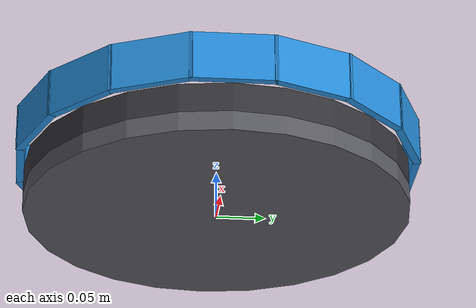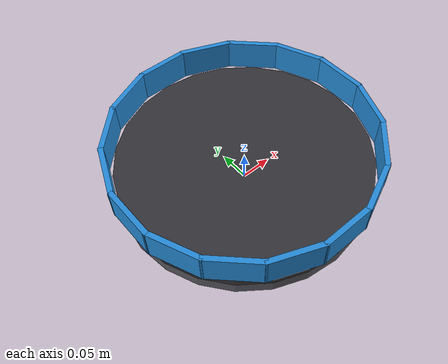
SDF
<?xml version="1.0" encoding="UTF-8"?>
<!-- funnel_tray_big —— 自动生成（tools/gen_tray.py）。独立圆形托盘（static），供物理/落物测试。 -->
<sdf version='1.9'>
  <model name='funnel_tray_big'>
    <static>true</static>
    <link name="tray">
      <pose>0 0 0 0 0 0</pose>
      <inertial><mass>0.12</mass><inertia><ixx>6.0e-4</ixx><iyy>6.0e-4</iyy><izz>6.0e-4</izz><ixy>0</ixy><ixz>0</ixz><iyz>0</iyz></inertia></inertial>
      <collision name="tray_base"><pose>0 0 0.0100 0 0 0</pose><geometry><cylinder><radius>0.2000</radius><length>0.02</length></cylinder></geometry><surface><friction><ode><mu>0.8</mu><mu2>0.8</mu2></ode></friction><bounce><restitution_coefficient>0.1</restitution_coefficient></bounce></surface></collision>
      <collision name="tray_cushion"><pose>0 0 0.0350 0 0 0</pose><geometry><cylinder><radius>0.2000</radius><length>0.03</length></cylinder></geometry><surface><friction><ode><mu>1.5</mu><mu2>1.5</mu2></ode></friction><bounce><restitution_coefficient>0.05</restitution_coefficient></bounce></surface></collision>
      <collision name="tray_rim_0"><pose>0.2040 0.0000 0.0750 0 0 0.0000</pose><geometry><box><size>0.008 0.0860 0.05</size></box></geometry><surface><friction><ode><mu>0.8</mu><mu2>0.8</mu2></ode></friction><bounce><restitution_coefficient>0.1</restitution_coefficient></bounce></surface></collision>
      <collision name="tray_rim_1"><pose>0.1885 0.0781 0.0750 0 0 0.3927</pose><geometry><box><size>0.008 0.0860 0.05</size></box></geometry><surface><friction><ode><mu>0.8</mu><mu2>0.8</mu2></ode></friction><bounce><restitution_coefficient>0.1</restitution_coefficient></bounce></surface></collision>
      <collision name="tray_rim_2"><pose>0.1442 0.1442 0.0750 0 0 0.7854</pose><geometry><box><size>0.008 0.0860 0.05</size></box></geometry><surface><friction><ode><mu>0.8</mu><mu2>0.8</mu2></ode></friction><bounce><restitution_coefficient>0.1</restitution_coefficient></bounce></surface></collision>
      <collision name="tray_rim_3"><pose>0.0781 0.1885 0.0750 0 0 1.1781</pose><geometry><box><size>0.008 0.0860 0.05</size></box></geometry><surface><friction><ode><mu>0.8</mu><mu2>0.8</mu2></ode></friction><bounce><restitution_coefficient>0.1</restitution_coefficient></bounce></surface></collision>
      <collision name="tray_rim_4"><pose>0.0000 0.2040 0.0750 0 0 1.5708</pose><geometry><box><size>0.008 0.0860 0.05</size></box></geometry><surface><friction><ode><mu>0.8</mu><mu2>0.8</mu2></ode></friction><bounce><restitution_coefficient>0.1</restitution_coefficient></bounce></surface></collision>
      <collision name="tray_rim_5"><pose>-0.0781 0.1885 0.0750 0 0 1.9635</pose><geometry><box><size>0.008 0.0860 0.05</size></box></geometry><surface><friction><ode><mu>0.8</mu><mu2>0.8</mu2></ode></friction><bounce><restitution_coefficient>0.1</restitution_coefficient></bounce></surface></collision>
      <collision name="tray_rim_6"><pose>-0.1442 0.1442 0.0750 0 0 2.3562</pose><geometry><box><size>0.008 0.0860 0.05</size></box></geometry><surface><friction><ode><mu>0.8</mu><mu2>0.8</mu2></ode></friction><bounce><restitution_coefficient>0.1</restitution_coefficient></bounce></surface></collision>
      <collision name="tray_rim_7"><pose>-0.1885 0.0781 0.0750 0 0 2.7489</pose><geometry><box><size>0.008 0.0860 0.05</size></box></geometry><surface><friction><ode><mu>0.8</mu><mu2>0.8</mu2></ode></friction><bounce><restitution_coefficient>0.1</restitution_coefficient></bounce></surface></collision>
      <collision name="tray_rim_8"><pose>-0.2040 0.0000 0.0750 0 0 3.1416</pose><geometry><box><size>0.008 0.0860 0.05</size></box></geometry><surface><friction><ode><mu>0.8</mu><mu2>0.8</mu2></ode></friction><bounce><restitution_coefficient>0.1</restitution_coefficient></bounce></surface></collision>
      <collision name="tray_rim_9"><pose>-0.1885 -0.0781 0.0750 0 0 3.5343</pose><geometry><box><size>0.008 0.0860 0.05</size></box></geometry><surface><friction><ode><mu>0.8</mu><mu2>0.8</mu2></ode></friction><bounce><restitution_coefficient>0.1</restitution_coefficient></bounce></surface></collision>
      <collision name="tray_rim_10"><pose>-0.1442 -0.1442 0.0750 0 0 3.9270</pose><geometry><box><size>0.008 0.0860 0.05</size></box></geometry><surface><friction><ode><mu>0.8</mu><mu2>0.8</mu2></ode></friction><bounce><restitution_coefficient>0.1</restitution_coefficient></bounce></surface></collision>
      <collision name="tray_rim_11"><pose>-0.0781 -0.1885 0.0750 0 0 4.3197</pose><geometry><box><size>0.008 0.0860 0.05</size></box></geometry><surface><friction><ode><mu>0.8</mu><mu2>0.8</mu2></ode></friction><bounce><restitution_coefficient>0.1</restitution_coefficient></bounce></surface></collision>
      <collision name="tray_rim_12"><pose>-0.0000 -0.2040 0.0750 0 0 4.7124</pose><geometry><box><size>0.008 0.0860 0.05</size></box></geometry><surface><friction><ode><mu>0.8</mu><mu2>0.8</mu2></ode></friction><bounce><restitution_coefficient>0.1</restitution_coefficient></bounce></surface></collision>
      <collision name="tray_rim_13"><pose>0.0781 -0.1885 0.0750 0 0 5.1051</pose><geometry><box><size>0.008 0.0860 0.05</size></box></geometry><surface><friction><ode><mu>0.8</mu><mu2>0.8</mu2></ode></friction><bounce><restitution_coefficient>0.1</restitution_coefficient></bounce></surface></collision>
      <collision name="tray_rim_14"><pose>0.1442 -0.1442 0.0750 0 0 5.4978</pose><geometry><box><size>0.008 0.0860 0.05</size></box></geometry><surface><friction><ode><mu>0.8</mu><mu2>0.8</mu2></ode></friction><bounce><restitution_coefficient>0.1</restitution_coefficient></bounce></surface></collision>
      <collision name="tray_rim_15"><pose>0.1885 -0.0781 0.0750 0 0 5.8905</pose><geometry><box><size>0.008 0.0860 0.05</size></box></geometry><surface><friction><ode><mu>0.8</mu><mu2>0.8</mu2></ode></friction><bounce><restitution_coefficient>0.1</restitution_coefficient></bounce></surface></collision>
      <visual name="tray_base_v"><pose>0 0 0.0100 0 0 0</pose><geometry><cylinder><radius>0.2000</radius><length>0.02</length></cylinder></geometry><material><ambient>0.35 0.35 0.38 1</ambient><diffuse>0.35 0.35 0.38 1</diffuse></material></visual>
      <visual name="tray_cushion_v"><pose>0 0 0.0350 0 0 0</pose><geometry><cylinder><radius>0.2000</radius><length>0.03</length></cylinder></geometry><material><ambient>0.20 0.20 0.22 1</ambient><diffuse>0.20 0.20 0.22 1</diffuse></material></visual>
      <visual name="tray_rim_v_0"><pose>0.2040 0.0000 0.0750 0 0 0.0000</pose><geometry><box><size>0.008 0.0860 0.05</size></box></geometry><material><ambient>0.15 0.55 0.85 1</ambient><diffuse>0.15 0.55 0.85 1</diffuse></material></visual>
      <visual name="tray_rim_v_1"><pose>0.1885 0.0781 0.0750 0 0 0.3927</pose><geometry><box><size>0.008 0.0860 0.05</size></box></geometry><material><ambient>0.15 0.55 0.85 1</ambient><diffuse>0.15 0.55 0.85 1</diffuse></material></visual>
      <visual name="tray_rim_v_2"><pose>0.1442 0.1442 0.0750 0 0 0.7854</pose><geometry><box><size>0.008 0.0860 0.05</size></box></geometry><material><ambient>0.15 0.55 0.85 1</ambient><diffuse>0.15 0.55 0.85 1</diffuse></material></visual>
      <visual name="tray_rim_v_3"><pose>0.0781 0.1885 0.0750 0 0 1.1781</pose><geometry><box><size>0.008 0.0860 0.05</size></box></geometry><material><ambient>0.15 0.55 0.85 1</ambient><diffuse>0.15 0.55 0.85 1</diffuse></material></visual>
      <visual name="tray_rim_v_4"><pose>0.0000 0.2040 0.0750 0 0 1.5708</pose><geometry><box><size>0.008 0.0860 0.05</size></box></geometry><material><ambient>0.15 0.55 0.85 1</ambient><diffuse>0.15 0.55 0.85 1</diffuse></material></visual>
      <visual name="tray_rim_v_5"><pose>-0.0781 0.1885 0.0750 0 0 1.9635</pose><geometry><box><size>0.008 0.0860 0.05</size></box></geometry><material><ambient>0.15 0.55 0.85 1</ambient><diffuse>0.15 0.55 0.85 1</diffuse></material></visual>
      <visual name="tray_rim_v_6"><pose>-0.1442 0.1442 0.0750 0 0 2.3562</pose><geometry><box><size>0.008 0.0860 0.05</size></box></geometry><material><ambient>0.15 0.55 0.85 1</ambient><diffuse>0.15 0.55 0.85 1</diffuse></material></visual>
      <visual name="tray_rim_v_7"><pose>-0.1885 0.0781 0.0750 0 0 2.7489</pose><geometry><box><size>0.008 0.0860 0.05</size></box></geometry><material><ambient>0.15 0.55 0.85 1</ambient><diffuse>0.15 0.55 0.85 1</diffuse></material></visual>
      <visual name="tray_rim_v_8"><pose>-0.2040 0.0000 0.0750 0 0 3.1416</pose><geometry><box><size>0.008 0.0860 0.05</size></box></geometry><material><ambient>0.15 0.55 0.85 1</ambient><diffuse>0.15 0.55 0.85 1</diffuse></material></visual>
      <visual name="tray_rim_v_9"><pose>-0.1885 -0.0781 0.0750 0 0 3.5343</pose><geometry><box><size>0.008 0.0860 0.05</size></box></geometry><material><ambient>0.15 0.55 0.85 1</ambient><diffuse>0.15 0.55 0.85 1</diffuse></material></visual>
      <visual name="tray_rim_v_10"><pose>-0.1442 -0.1442 0.0750 0 0 3.9270</pose><geometry><box><size>0.008 0.0860 0.05</size></box></geometry><material><ambient>0.15 0.55 0.85 1</ambient><diffuse>0.15 0.55 0.85 1</diffuse></material></visual>
      <visual name="tray_rim_v_11"><pose>-0.0781 -0.1885 0.0750 0 0 4.3197</pose><geometry><box><size>0.008 0.0860 0.05</size></box></geometry><material><ambient>0.15 0.55 0.85 1</ambient><diffuse>0.15 0.55 0.85 1</diffuse></material></visual>
      <visual name="tray_rim_v_12"><pose>-0.0000 -0.2040 0.0750 0 0 4.7124</pose><geometry><box><size>0.008 0.0860 0.05</size></box></geometry><material><ambient>0.15 0.55 0.85 1</ambient><diffuse>0.15 0.55 0.85 1</diffuse></material></visual>
      <visual name="tray_rim_v_13"><pose>0.0781 -0.1885 0.0750 0 0 5.1051</pose><geometry><box><size>0.008 0.0860 0.05</size></box></geometry><material><ambient>0.15 0.55 0.85 1</ambient><diffuse>0.15 0.55 0.85 1</diffuse></material></visual>
      <visual name="tray_rim_v_14"><pose>0.1442 -0.1442 0.0750 0 0 5.4978</pose><geometry><box><size>0.008 0.0860 0.05</size></box></geometry><material><ambient>0.15 0.55 0.85 1</ambient><diffuse>0.15 0.55 0.85 1</diffuse></material></visual>
      <visual name="tray_rim_v_15"><pose>0.1885 -0.0781 0.0750 0 0 5.8905</pose><geometry><box><size>0.008 0.0860 0.05</size></box></geometry><material><ambient>0.15 0.55 0.85 1</ambient><diffuse>0.15 0.55 0.85 1</diffuse></material></visual>
    </link>
  </model>
</sdf>
